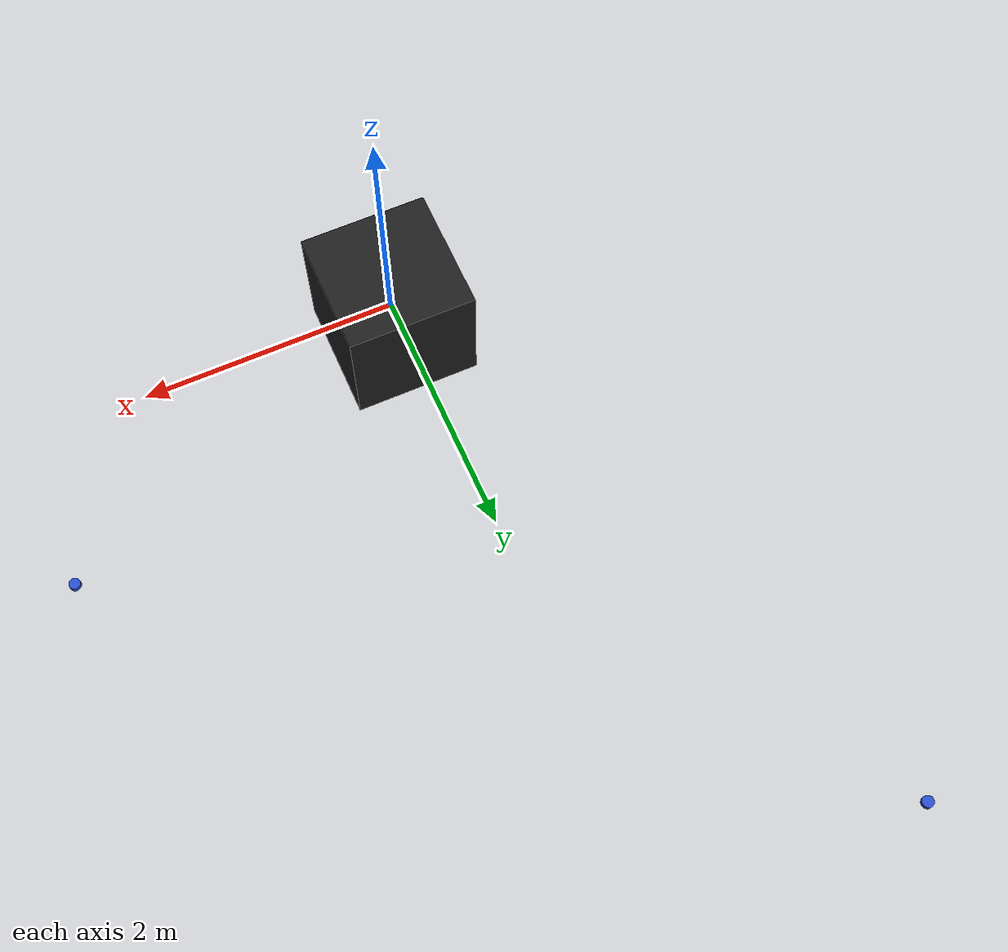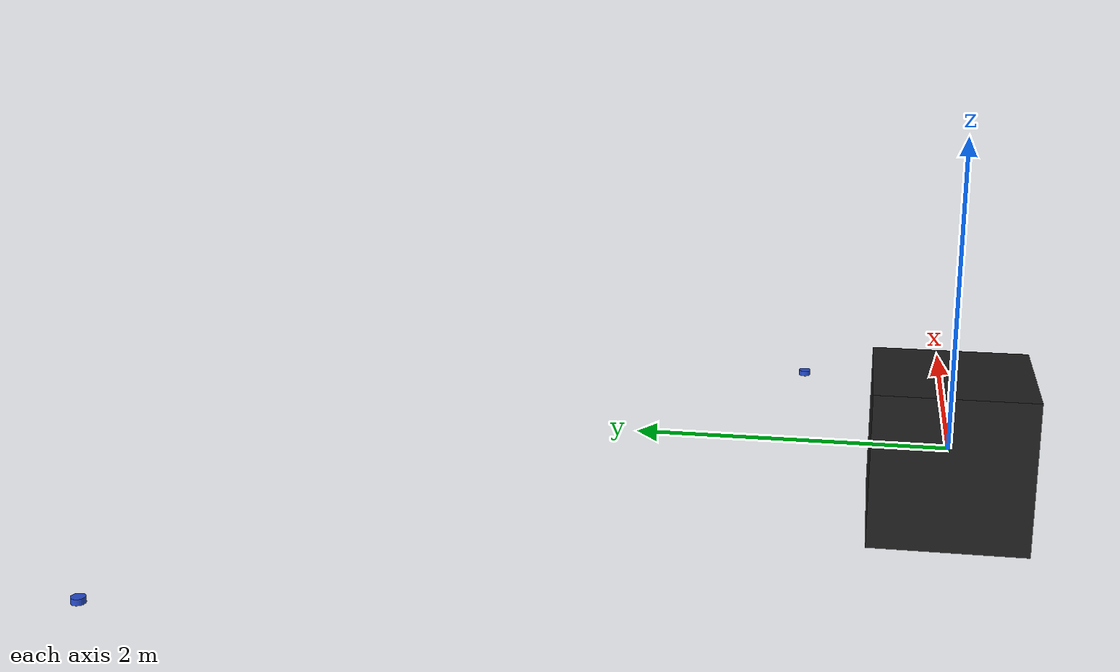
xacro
<robot name="hokuyo_tf" xmlns:xacro="http://wiki.ros.org/xacro">
   <xacro:include filename="$(find hokuyo_description)/urdf/hokuyo.urdf.xacro"/>
   <xacro:include filename="$(find hokuyo_description)/urdf/hokuyo1.urdf.xacro"/>

   <xacro:hokuyo_laser
    xyz="3 1 -0.5"
    rpy="0 0 0"
    parent="base_link">
  </xacro:hokuyo_laser>

  <xacro:hokuyo_laser1
    xyz="-2 5 -0.5"
    rpy="0 0 0"
    parent="base_link">
  </xacro:hokuyo_laser1>

  <link name="base_link">
    <visual>
      <origin xyz="0 0 0" rpy="0 0 0"/>
      <geometry>
        <box size="1 1 1"/>
      </geometry>
      <material name="black" />
    </visual>
    <collision>
      <origin xyz="0 0 0" rpy="0 0 0"/>
      <geometry>
        <box size="1 1 1"/>
      </geometry>
    </collision>

  </link>

</robot>

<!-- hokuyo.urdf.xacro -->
<robot xmlns:xacro="http://www.ros.org/wiki/xacro" name="hokuyo1">

<xacro:macro name="hokuyo_laser" params="xyz rpy parent">
    <joint name="hokuyo_laser_joint" type="prismatic">
        <axis xyz="0 0 1" />
        <origin xyz="${xyz}" rpy="${rpy}"/>
        <parent link="${parent}"/>
        <child link="hokuyo_laser_link"/>
        <limit lower="0" upper="0" velocity="-1" effort="-1"/>
    </joint>

    <link name="hokuyo_laser_link">
        <collision>
            <origin xyz="0 0 0" rpy="0 0 0"/>
            <geometry>
                <cylinder length="0.04" radius="0.045"/>
            </geometry>
        </collision>
        <visual>
            <origin xyz="0 0 0" rpy="0 0 0"/>
            <geometry>
                <cylinder length="0.04" radius="0.045"/>
            </geometry>
            <material name="iRobot/LightBlue"/>
        </visual>
        <inertial>
            <mass value="1e-5" />
            <origin xyz="0 0 0" rpy="0 0 0"/>
            <inertia ixx="1e-6" ixy="0" ixz="0" iyy="1e-6" iyz="0" izz="1e-6" />
        </inertial>
    </link>

    <gazebo reference="hokuyo_laser_link">
        <gravity>true</gravity>
        <sensor type="ray" name="head_hokuyo_sensor">
            <pose>0 0 0 0 0 0</pose>
            <visualize>false</visualize>
            <update_rate>40</update_rate>
            <ray>
                <scan>
                    <horizontal>
                        <samples>40</samples>
                        <resolution>1</resolution>
                        <min_angle>-3.14159</min_angle>
                        <max_angle>3.14159</max_angle>
                    </horizontal>
                    <vertical>
                        <samples>8</samples>
                        <resolution>1</resolution>
                        <min_angle>-0.2</min_angle>
                        <max_angle>0.2</max_angle>
                    </vertical>
                </scan>
                <range>
                    <min>0.2</min>
                    <max>40</max>
                    <resolution>0.025</resolution>
                </range>
                <noise>
                    <type>gaussian</type>
                    <mean>0.0</mean>
                    <stddev>0.0</stddev>
                </noise>
            </ray>
            <plugin name="gazebo_ros_head_hokuyo_controller" filename="libgazebo_ros_laser.so">
                <robotNamespace>hokuyo</robotNamespace>
                <topicName>laser_scan</topicName>
                <frameName>hokuyo_laser_link</frameName>
            </plugin>
        </sensor>
    </gazebo>

</xacro:macro>

</robot>

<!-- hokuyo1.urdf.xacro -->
<robot xmlns:xacro="http://www.ros.org/wiki/xacro" name="hokuyo1">

<xacro:macro name="hokuyo_laser1" params="xyz rpy parent">
    <joint name="hokuyo_laser_joint1" type="fixed">
        <axis xyz="0 0 1" />
        <origin xyz="${xyz}" rpy="${rpy}"/>
        <parent link="${parent}"/>
        <child link="hokuyo_laser_link1"/>
        <limit lower="0" upper="0" velocity="-1" effort="-1"/>
    </joint>

    <link name="hokuyo_laser_link1">
        <collision>
            <origin xyz="0 0 0" rpy="0 0 0"/>
            <geometry>
                <cylinder length="0.04" radius="0.045"/>
            </geometry>
        </collision>
        <visual>
            <origin xyz="0 0 0" rpy="0 0 0"/>
            <geometry>
                <cylinder length="0.04" radius="0.045"/>
            </geometry>
            <material name="iRobot/LightBlue"/>
        </visual>
        <inertial>
            <mass value="1e-5" />
            <origin xyz="0 0 0" rpy="0 0 0"/>
            <inertia ixx="1e-6" ixy="0" ixz="0" iyy="1e-6" iyz="0" izz="1e-6" />
        </inertial>
    </link>

    <gazebo reference="hokuyo_laser_link1">
        <gravity>true</gravity>
        <sensor type="ray" name="head_hokuyo_sensor">
            <pose>0 0 0 0 0 0</pose>
            <visualize>false</visualize>
            <update_rate>40</update_rate>
            <ray>
                <scan>
                    <horizontal>
                        <samples>40</samples>
                        <resolution>1</resolution>
                        <min_angle>-3.14159</min_angle>
                        <max_angle>3.14159</max_angle>
                    </horizontal>
                    <vertical>
                        <samples>8</samples>
                        <resolution>1</resolution>
                        <min_angle>-0.2</min_angle>
                        <max_angle>0.2</max_angle>
                    </vertical>
                </scan>
                <range>
                    <min>0.2</min>
                    <max>40</max>
                    <resolution>0.025</resolution>
                </range>
                <noise>
                    <type>gaussian</type>
                    <mean>0.0</mean>
                    <stddev>0.0</stddev>
                </noise>
            </ray>
            <plugin name="gazebo_ros_head_hokuyo_controller" filename="libgazebo_ros_laser.so">
                <robotNamespace></robotNamespace>
                <topicName>laser_scan</topicName>
                <frameName>hokuyo_laser_link</frameName>
            </plugin>
        </sensor>
    </gazebo>

</xacro:macro>

</robot>
